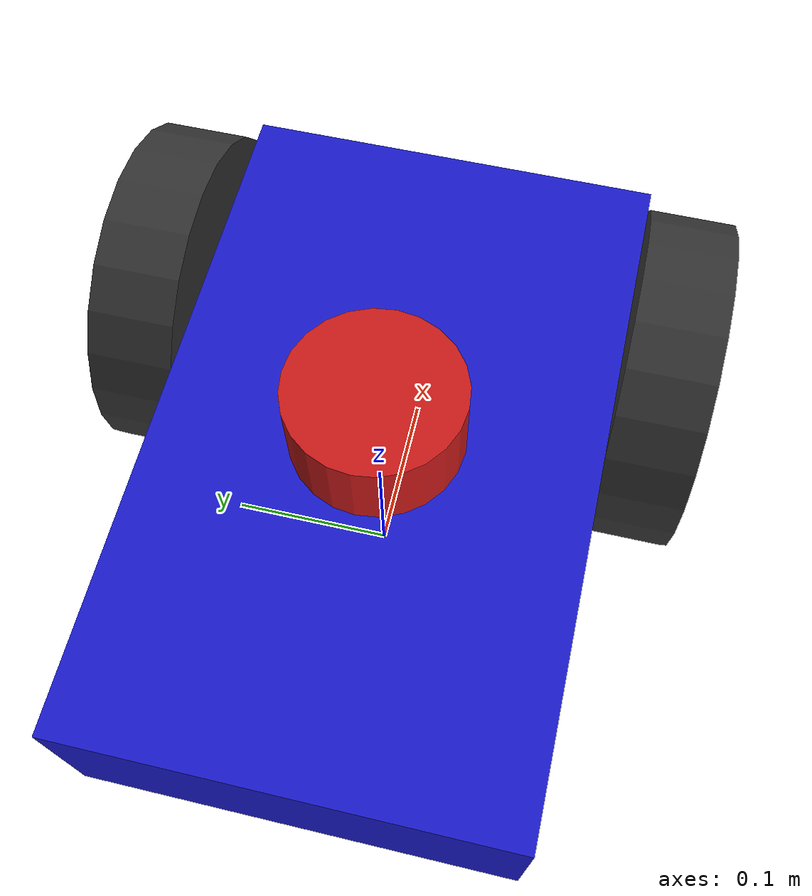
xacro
<?xml version="1.0"?>
<robot xmlns:xacro="http://www.ros.org/wiki/xacro" name="inventory_bot">

  <xacro:property name="chassis_length" value="0.4"/>
  <xacro:property name="chassis_width" value="0.25"/>
  <xacro:property name="chassis_height" value="0.1"/>
  <xacro:property name="chassis_mass" value="5.0"/>

  <xacro:property name="wheel_radius" value="0.1"/>
  <xacro:property name="wheel_length" value="0.05"/>
  <xacro:property name="wheel_mass" value="0.5"/>
  <xacro:property name="wheel_x_offset" value="0.1"/>

  <xacro:property name="caster_radius" value="0.05"/>
  <xacro:property name="caster_mass" value="0.1"/>

  <material name="blue"><color rgba="0.1 0.1 0.8 1.0"/></material>
  <material name="black"><color rgba="0.2 0.2 0.2 1.0"/></material>
  <material name="red"><color rgba="0.8 0.1 0.1 1.0"/></material>
  <material name="dark_grey"><color rgba="0.2 0.2 0.2 1.0"/></material>

  <link name="base_footprint"/>

  <link name="base_link">
    <visual>
      <geometry><box size="${chassis_length} ${chassis_width} ${chassis_height}"/></geometry>
      <material name="blue"/>
    </visual>
    <collision>
      <geometry><box size="${chassis_length} ${chassis_width} ${chassis_height}"/></geometry>
    </collision>
    <inertial>
      <mass value="${chassis_mass}"/>
      <inertia
        ixx="${(1.0/12.0)*chassis_mass*(chassis_width*chassis_width+chassis_height*chassis_height)}" ixy="0.0" ixz="0.0"
        iyy="${(1.0/12.0)*chassis_mass*(chassis_length*chassis_length+chassis_height*chassis_height)}" iyz="0.0"
        izz="${(1.0/12.0)*chassis_mass*(chassis_length*chassis_length+chassis_width*chassis_width)}"/>
    </inertial>
  </link>

  <joint name="base_joint" type="fixed">
    <parent link="base_footprint"/>
    <child link="base_link"/>
    <origin xyz="0.0 0.0 ${wheel_radius}" rpy="0.0 0.0 0.0"/>
  </joint>

  <xacro:macro name="generate_wheel" params="side reflect">
    <link name="${side}_wheel">
      <visual>
        <origin xyz="0 0 0" rpy="${pi/2} 0 0"/>
        <geometry><cylinder radius="${wheel_radius}" length="${wheel_length}"/></geometry>
        <material name="black"/>
      </visual>
      <collision>
        <origin xyz="0 0 0" rpy="${pi/2} 0 0"/>
        <geometry><cylinder radius="${wheel_radius}" length="${wheel_length}"/></geometry>
      </collision>
      <inertial>
        <mass value="${wheel_mass}"/>
        <inertia
          ixx="${(1.0/12.0)*wheel_mass*(3.0*wheel_radius*wheel_radius+wheel_length*wheel_length)}" ixy="0.0" ixz="0.0"
          iyy="${0.5*wheel_mass*wheel_radius*wheel_radius}" iyz="0.0"
          izz="${(1.0/12.0)*wheel_mass*(3.0*wheel_radius*wheel_radius+wheel_length*wheel_length)}"/>
      </inertial>
    </link>
    <joint name="${side}_wheel_joint" type="continuous">
      <parent link="base_link"/>
      <child link="${side}_wheel"/>
      <origin xyz="${wheel_x_offset} ${reflect*(chassis_width/2 + wheel_length/2)} 0.0" rpy="0 0 0"/>
      <axis xyz="0 1 0"/>
    </joint>
  </xacro:macro>

  <xacro:generate_wheel side="left" reflect="1"/>
  <xacro:generate_wheel side="right" reflect="-1"/>

  <link name="caster_wheel">
    <visual>
      <geometry><sphere radius="${caster_radius}"/></geometry>
      <material name="dark_grey"/>
    </visual>
    <collision>
      <geometry><sphere radius="${caster_radius}"/></geometry>
    </collision>
    <inertial>
      <mass value="${caster_mass}"/>
      <inertia
        ixx="${(2.0/5.0)*caster_mass*caster_radius*caster_radius}" ixy="0.0" ixz="0.0"
        iyy="${(2.0/5.0)*caster_mass*caster_radius*caster_radius}" iyz="0.0"
        izz="${(2.0/5.0)*caster_mass*caster_radius*caster_radius}"/>
    </inertial>
  </link>
  <joint name="caster_wheel_joint" type="fixed">
    <parent link="base_link"/>
    <child link="caster_wheel"/>
    <origin xyz="${-chassis_length/2 + caster_radius} 0.0 ${-(wheel_radius - caster_radius)}" rpy="0 0 0"/>
  </joint>

  <gazebo reference="caster_wheel">
    <mu1>0.001</mu1>
    <mu2>0.001</mu2>
    <material>Gazebo/DarkGrey</material>
  </gazebo>

  <link name="lidar_link">
    <visual><geometry><cylinder radius="0.05" length="0.05"/></geometry><material name="red"/></visual>
    <collision><geometry><cylinder radius="0.05" length="0.05"/></geometry></collision>
    <inertial><mass value="0.1"/><inertia ixx="0.0001" ixy="0" ixz="0" iyy="0.0001" iyz="0" izz="0.0001"/></inertial>
  </link>
  <joint name="lidar_joint" type="fixed">
    <parent link="base_link"/>
    <child link="lidar_link"/>
    <origin xyz="0 0 0.075" rpy="0 0 0"/>
  </joint>

  <link name="camera_link">
    <visual><geometry><box size="0.02 0.05 0.05"/></geometry><material name="red"/></visual>
    <collision><geometry><box size="0.02 0.05 0.05"/></geometry></collision>
    <inertial><mass value="0.1"/><inertia ixx="0.0001" ixy="0" ixz="0" iyy="0.0001" iyz="0" izz="0.0001"/></inertial>
  </link>
  <joint name="camera_joint" type="fixed">
    <parent link="base_link"/>
    <child link="camera_link"/>
    <origin xyz="0.21 0 0.0" rpy="0 0 0"/>
  </joint>

  <link name="camera_link_optical"/>
  <joint name="camera_optical_joint" type="fixed">
    <parent link="camera_link"/>
    <child link="camera_link_optical"/>
    <origin xyz="0 0 0" rpy="${-pi/2} 0 ${-pi/2}"/>
  </joint>

  <gazebo>
    <plugin filename="gz-sim-diff-drive-system" name="gz::sim::systems::DiffDrive">
      <left_joint>left_wheel_joint</left_joint>
      <right_joint>right_wheel_joint</right_joint>
      <wheel_separation>${chassis_width + wheel_length}</wheel_separation>
      <wheel_radius>${wheel_radius}</wheel_radius>
      <odom_publish_frequency>50</odom_publish_frequency>
      <topic>/cmd_vel</topic>
      <odom_topic>/odom</odom_topic>
      <tf_topic>/tf</tf_topic>
      <frame_id>odom</frame_id>
      <child_frame_id>base_footprint</child_frame_id>
    </plugin>
    <plugin filename="gz-sim-joint-state-publisher-system" name="gz::sim::systems::JointStatePublisher">
      <topic>/joint_states</topic>
    </plugin>
  </gazebo>

  <gazebo reference="lidar_link">
    <sensor name="lidar" type="gpu_lidar">
      <topic>/scan</topic>
      <gz_frame_id>lidar_link</gz_frame_id>
      <update_rate>10</update_rate>
      <ray>
        <scan>
          <horizontal>
            <samples>360</samples>
            <resolution>1</resolution>
            <min_angle>-3.14159</min_angle>
            <max_angle>3.14159</max_angle>
          </horizontal>
        </scan>
        <range><min>0.3</min><max>12.0</max></range>
      </ray>
      <always_on>true</always_on>
      <visualize>true</visualize>
    </sensor>
  </gazebo>

  <gazebo reference="camera_link">
    <sensor name="camera" type="camera">
      <topic>/camera/image_raw</topic>
      <gz_frame_id>camera_link_optical</gz_frame_id>
      <camera>
        <horizontal_fov>1.047</horizontal_fov>
        <image><width>640</width><height>480</height></image>
        <clip><near>0.1</near><far>100</far></clip>
      </camera>
      <always_on>true</always_on>
      <update_rate>30</update_rate>
      <visualize>true</visualize>
    </sensor>
  </gazebo>

</robot>
